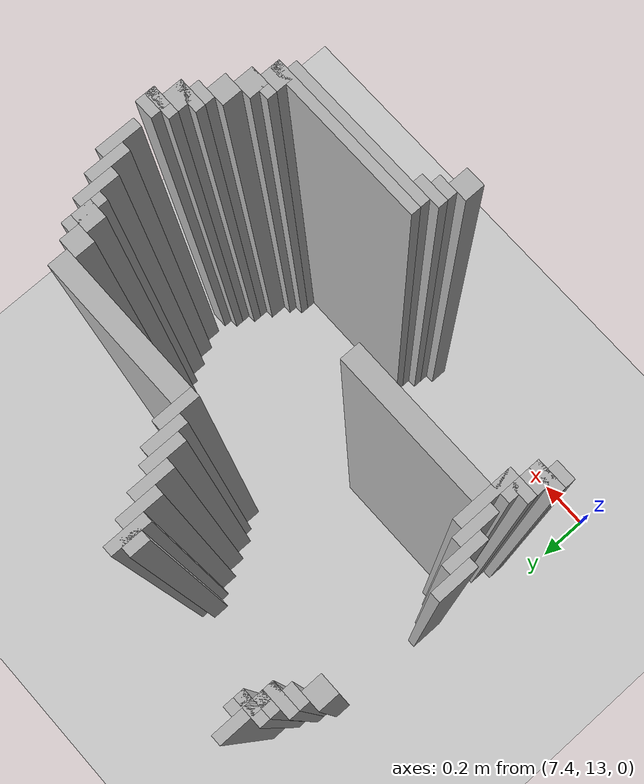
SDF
<sdf version="1.6">
 <world name="slam_world">
  <model name="ground_plane">
   <static>true</static>
   <link name="link">
    <collision name="collision">
     <geometry><plane><normal>0 0 1</normal><size>100 100</size></plane></geometry>
    </collision>
    <visual name="visual">
     <geometry><plane><normal>0 0 1</normal><size>100 100</size></plane></geometry>
     <material>
      <ambient>0.8 0.8 0.8 1</ambient>
      <diffuse>0.8 0.8 0.8 1</diffuse>
      <specular>0.8 0.8 0.8 1</specular>
     </material>
    </visual>
   </link>
  </model>
  <model name="wall_987">
   <static>true</static>
   <pose>7.604408352668213 14.408352668213457 1.0 0 0 0</pose>
   <link name="link">
    <collision name="collision">
     <geometry><box><size>0.03480278422273782 0.2088167053364269 2.0</size></box></geometry>
    </collision>
    <visual name="visual">
     <geometry><box><size>0.03480278422273782 0.2088167053364269 2.0</size></box></geometry>
     <material><ambient>0.5 0.5 0.5 1</ambient><diffuse>0.7 0.7 0.7 1</diffuse></material>
    </visual>
   </link>
  </model>
  <model name="wall_1009">
   <static>true</static>
   <pose>7.6392111368909505 14.408352668213457 1.0 0 0 0</pose>
   <link name="link">
    <collision name="collision">
     <geometry><box><size>0.03480278422273782 0.06960556844547564 2.0</size></box></geometry>
    </collision>
    <visual name="visual">
     <geometry><box><size>0.03480278422273782 0.06960556844547564 2.0</size></box></geometry>
     <material><ambient>0.5 0.5 0.5 1</ambient><diffuse>0.7 0.7 0.7 1</diffuse></material>
    </visual>
   </link>
  </model>
  <model name="wall_1024">
   <static>true</static>
   <pose>7.604408352668213 14.390951276102088 1.0 0 0 0</pose>
   <link name="link">
    <collision name="collision">
     <geometry><box><size>0.10440835266821345 0.03480278422273782 2.0</size></box></geometry>
    </collision>
    <visual name="visual">
     <geometry><box><size>0.10440835266821345 0.03480278422273782 2.0</size></box></geometry>
     <material><ambient>0.5 0.5 0.5 1</ambient><diffuse>0.7 0.7 0.7 1</diffuse></material>
    </visual>
   </link>
  </model>
  <model name="wall_1025">
   <static>true</static>
   <pose>8.161252900232018 14.33874709976798 1.0 0 0 0</pose>
   <link name="link">
    <collision name="collision">
     <geometry><box><size>0.03480278422273782 0.13921113689095127 2.0</size></box></geometry>
    </collision>
    <visual name="visual">
     <geometry><box><size>0.03480278422273782 0.13921113689095127 2.0</size></box></geometry>
     <material><ambient>0.5 0.5 0.5 1</ambient><diffuse>0.7 0.7 0.7 1</diffuse></material>
    </visual>
   </link>
  </model>
  <model name="wall_1036">
   <static>true</static>
   <pose>7.587006960556844 14.33874709976798 1.0 0 0 0</pose>
   <link name="link">
    <collision name="collision">
     <geometry><box><size>0.06960556844547564 0.06960556844547564 2.0</size></box></geometry>
    </collision>
    <visual name="visual">
     <geometry><box><size>0.06960556844547564 0.06960556844547564 2.0</size></box></geometry>
     <material><ambient>0.5 0.5 0.5 1</ambient><diffuse>0.7 0.7 0.7 1</diffuse></material>
    </visual>
   </link>
  </model>
  <model name="wall_1037">
   <static>true</static>
   <pose>8.14385150812065 14.33874709976798 1.0 0 0 0</pose>
   <link name="link">
    <collision name="collision">
     <geometry><box><size>0.06960556844547564 0.06960556844547564 2.0</size></box></geometry>
    </collision>
    <visual name="visual">
     <geometry><box><size>0.06960556844547564 0.06960556844547564 2.0</size></box></geometry>
     <material><ambient>0.5 0.5 0.5 1</ambient><diffuse>0.7 0.7 0.7 1</diffuse></material>
    </visual>
   </link>
  </model>
  <model name="wall_1048">
   <static>true</static>
   <pose>7.569605568445476 14.321345707656612 1.0 0 0 0</pose>
   <link name="link">
    <collision name="collision">
     <geometry><box><size>0.10440835266821345 0.03480278422273782 2.0</size></box></geometry>
    </collision>
    <visual name="visual">
     <geometry><box><size>0.10440835266821345 0.03480278422273782 2.0</size></box></geometry>
     <material><ambient>0.5 0.5 0.5 1</ambient><diffuse>0.7 0.7 0.7 1</diffuse></material>
    </visual>
   </link>
  </model>
  <model name="wall_1049">
   <static>true</static>
   <pose>8.196055684454755 14.269141531322505 1.0 0 0 0</pose>
   <link name="link">
    <collision name="collision">
     <geometry><box><size>0.03480278422273782 0.13921113689095127 2.0</size></box></geometry>
    </collision>
    <visual name="visual">
     <geometry><box><size>0.03480278422273782 0.13921113689095127 2.0</size></box></geometry>
     <material><ambient>0.5 0.5 0.5 1</ambient><diffuse>0.7 0.7 0.7 1</diffuse></material>
    </visual>
   </link>
  </model>
  <model name="wall_1059">
   <static>true</static>
   <pose>7.552204176334106 14.286542923433874 1.0 0 0 0</pose>
   <link name="link">
    <collision name="collision">
     <geometry><box><size>0.06960556844547564 0.03480278422273782 2.0</size></box></geometry>
    </collision>
    <visual name="visual">
     <geometry><box><size>0.06960556844547564 0.03480278422273782 2.0</size></box></geometry>
     <material><ambient>0.5 0.5 0.5 1</ambient><diffuse>0.7 0.7 0.7 1</diffuse></material>
    </visual>
   </link>
  </model>
  <model name="wall_1067">
   <static>true</static>
   <pose>7.517401392111369 14.234338747099768 1.0 0 0 0</pose>
   <link name="link">
    <collision name="collision">
     <geometry><box><size>0.06960556844547564 0.06960556844547564 2.0</size></box></geometry>
    </collision>
    <visual name="visual">
     <geometry><box><size>0.06960556844547564 0.06960556844547564 2.0</size></box></geometry>
     <material><ambient>0.5 0.5 0.5 1</ambient><diffuse>0.7 0.7 0.7 1</diffuse></material>
    </visual>
   </link>
  </model>
  <model name="wall_1068">
   <static>true</static>
   <pose>8.230858468677495 14.199535962877029 1.0 0 0 0</pose>
   <link name="link">
    <collision name="collision">
     <geometry><box><size>0.03480278422273782 0.13921113689095127 2.0</size></box></geometry>
    </collision>
    <visual name="visual">
     <geometry><box><size>0.03480278422273782 0.13921113689095127 2.0</size></box></geometry>
     <material><ambient>0.5 0.5 0.5 1</ambient><diffuse>0.7 0.7 0.7 1</diffuse></material>
    </visual>
   </link>
  </model>
  <model name="wall_1080">
   <static>true</static>
   <pose>8.265661252900232 14.129930394431554 1.0 0 0 0</pose>
   <link name="link">
    <collision name="collision">
     <geometry><box><size>0.03480278422273782 0.13921113689095127 2.0</size></box></geometry>
    </collision>
    <visual name="visual">
     <geometry><box><size>0.03480278422273782 0.13921113689095127 2.0</size></box></geometry>
     <material><ambient>0.5 0.5 0.5 1</ambient><diffuse>0.7 0.7 0.7 1</diffuse></material>
    </visual>
   </link>
  </model>
  <model name="wall_1092">
   <static>true</static>
   <pose>8.30046403712297 14.095127610208817 1.0 0 0 0</pose>
   <link name="link">
    <collision name="collision">
     <geometry><box><size>0.03480278422273782 0.13921113689095127 2.0</size></box></geometry>
    </collision>
    <visual name="visual">
     <geometry><box><size>0.03480278422273782 0.13921113689095127 2.0</size></box></geometry>
     <material><ambient>0.5 0.5 0.5 1</ambient><diffuse>0.7 0.7 0.7 1</diffuse></material>
    </visual>
   </link>
  </model>
  <model name="wall_1111">
   <static>true</static>
   <pose>8.335266821345707 14.02552204176334 1.0 0 0 0</pose>
   <link name="link">
    <collision name="collision">
     <geometry><box><size>0.03480278422273782 0.13921113689095127 2.0</size></box></geometry>
    </collision>
    <visual name="visual">
     <geometry><box><size>0.03480278422273782 0.13921113689095127 2.0</size></box></geometry>
     <material><ambient>0.5 0.5 0.5 1</ambient><diffuse>0.7 0.7 0.7 1</diffuse></material>
    </visual>
   </link>
  </model>
  <model name="wall_1132">
   <static>true</static>
   <pose>8.61368909512761 13.990719257540603 1.0 0 0 0</pose>
   <link name="link">
    <collision name="collision">
     <geometry><box><size>0.5220417633410672 0.06960556844547564 2.0</size></box></geometry>
    </collision>
    <visual name="visual">
     <geometry><box><size>0.5220417633410672 0.06960556844547564 2.0</size></box></geometry>
     <material><ambient>0.5 0.5 0.5 1</ambient><diffuse>0.7 0.7 0.7 1</diffuse></material>
    </visual>
   </link>
  </model>
  <model name="wall_1147">
   <static>true</static>
   <pose>8.874709976798144 13.921113689095128 1.0 0 0 0</pose>
   <link name="link">
    <collision name="collision">
     <geometry><box><size>0.06960556844547564 0.06960556844547564 2.0</size></box></geometry>
    </collision>
    <visual name="visual">
     <geometry><box><size>0.06960556844547564 0.06960556844547564 2.0</size></box></geometry>
     <material><ambient>0.5 0.5 0.5 1</ambient><diffuse>0.7 0.7 0.7 1</diffuse></material>
    </visual>
   </link>
  </model>
  <model name="wall_1164">
   <static>true</static>
   <pose>8.92691415313225 13.851508120649651 1.0 0 0 0</pose>
   <link name="link">
    <collision name="collision">
     <geometry><box><size>0.03480278422273782 0.13921113689095127 2.0</size></box></geometry>
    </collision>
    <visual name="visual">
     <geometry><box><size>0.03480278422273782 0.13921113689095127 2.0</size></box></geometry>
     <material><ambient>0.5 0.5 0.5 1</ambient><diffuse>0.7 0.7 0.7 1</diffuse></material>
    </visual>
   </link>
  </model>
  <model name="wall_1181">
   <static>true</static>
   <pose>8.909512761020881 13.851508120649651 1.0 0 0 0</pose>
   <link name="link">
    <collision name="collision">
     <geometry><box><size>0.06960556844547564 0.06960556844547564 2.0</size></box></geometry>
    </collision>
    <visual name="visual">
     <geometry><box><size>0.06960556844547564 0.06960556844547564 2.0</size></box></geometry>
     <material><ambient>0.5 0.5 0.5 1</ambient><diffuse>0.7 0.7 0.7 1</diffuse></material>
    </visual>
   </link>
  </model>
  <model name="wall_1197">
   <static>true</static>
   <pose>7.5 13.781902552204176 1.0 0 0 0</pose>
   <link name="link">
    <collision name="collision">
     <geometry><box><size>0.03480278422273782 0.13921113689095127 2.0</size></box></geometry>
    </collision>
    <visual name="visual">
     <geometry><box><size>0.03480278422273782 0.13921113689095127 2.0</size></box></geometry>
     <material><ambient>0.5 0.5 0.5 1</ambient><diffuse>0.7 0.7 0.7 1</diffuse></material>
    </visual>
   </link>
  </model>
  <model name="wall_1198">
   <static>true</static>
   <pose>8.961716937354987 13.781902552204176 1.0 0 0 0</pose>
   <link name="link">
    <collision name="collision">
     <geometry><box><size>0.03480278422273782 0.13921113689095127 2.0</size></box></geometry>
    </collision>
    <visual name="visual">
     <geometry><box><size>0.03480278422273782 0.13921113689095127 2.0</size></box></geometry>
     <material><ambient>0.5 0.5 0.5 1</ambient><diffuse>0.7 0.7 0.7 1</diffuse></material>
    </visual>
   </link>
  </model>
  <model name="wall_1220">
   <static>true</static>
   <pose>7.534802784222737 13.7122969837587 1.0 0 0 0</pose>
   <link name="link">
    <collision name="collision">
     <geometry><box><size>0.03480278422273782 0.13921113689095127 2.0</size></box></geometry>
    </collision>
    <visual name="visual">
     <geometry><box><size>0.03480278422273782 0.13921113689095127 2.0</size></box></geometry>
     <material><ambient>0.5 0.5 0.5 1</ambient><diffuse>0.7 0.7 0.7 1</diffuse></material>
    </visual>
   </link>
  </model>
  <model name="wall_1221">
   <static>true</static>
   <pose>8.996519721577727 13.7122969837587 1.0 0 0 0</pose>
   <link name="link">
    <collision name="collision">
     <geometry><box><size>0.03480278422273782 0.13921113689095127 2.0</size></box></geometry>
    </collision>
    <visual name="visual">
     <geometry><box><size>0.03480278422273782 0.13921113689095127 2.0</size></box></geometry>
     <material><ambient>0.5 0.5 0.5 1</ambient><diffuse>0.7 0.7 0.7 1</diffuse></material>
    </visual>
   </link>
  </model>
  <model name="wall_1237">
   <static>true</static>
   <pose>7.569605568445476 13.642691415313225 1.0 0 0 0</pose>
   <link name="link">
    <collision name="collision">
     <geometry><box><size>0.03480278422273782 0.13921113689095127 2.0</size></box></geometry>
    </collision>
    <visual name="visual">
     <geometry><box><size>0.03480278422273782 0.13921113689095127 2.0</size></box></geometry>
     <material><ambient>0.5 0.5 0.5 1</ambient><diffuse>0.7 0.7 0.7 1</diffuse></material>
    </visual>
   </link>
  </model>
  <model name="wall_1238">
   <static>true</static>
   <pose>9.031322505800464 13.642691415313225 1.0 0 0 0</pose>
   <link name="link">
    <collision name="collision">
     <geometry><box><size>0.03480278422273782 0.13921113689095127 2.0</size></box></geometry>
    </collision>
    <visual name="visual">
     <geometry><box><size>0.03480278422273782 0.13921113689095127 2.0</size></box></geometry>
     <material><ambient>0.5 0.5 0.5 1</ambient><diffuse>0.7 0.7 0.7 1</diffuse></material>
    </visual>
   </link>
  </model>
  <model name="wall_1254">
   <static>true</static>
   <pose>7.604408352668213 13.573085846867748 1.0 0 0 0</pose>
   <link name="link">
    <collision name="collision">
     <geometry><box><size>0.03480278422273782 0.2088167053364269 2.0</size></box></geometry>
    </collision>
    <visual name="visual">
     <geometry><box><size>0.03480278422273782 0.2088167053364269 2.0</size></box></geometry>
     <material><ambient>0.5 0.5 0.5 1</ambient><diffuse>0.7 0.7 0.7 1</diffuse></material>
    </visual>
   </link>
  </model>
  <model name="wall_1276">
   <static>true</static>
   <pose>7.882830626450116 13.573085846867748 1.0 0 0 0</pose>
   <link name="link">
    <collision name="collision">
     <geometry><box><size>0.5220417633410672 0.06960556844547564 2.0</size></box></geometry>
    </collision>
    <visual name="visual">
     <geometry><box><size>0.5220417633410672 0.06960556844547564 2.0</size></box></geometry>
     <material><ambient>0.5 0.5 0.5 1</ambient><diffuse>0.7 0.7 0.7 1</diffuse></material>
    </visual>
   </link>
  </model>
  <model name="wall_1298">
   <static>true</static>
   <pose>7.587006960556844 13.503480278422273 1.0 0 0 0</pose>
   <link name="link">
    <collision name="collision">
     <geometry><box><size>0.06960556844547564 0.06960556844547564 2.0</size></box></geometry>
    </collision>
    <visual name="visual">
     <geometry><box><size>0.06960556844547564 0.06960556844547564 2.0</size></box></geometry>
     <material><ambient>0.5 0.5 0.5 1</ambient><diffuse>0.7 0.7 0.7 1</diffuse></material>
    </visual>
   </link>
  </model>
  <model name="wall_1299">
   <static>true</static>
   <pose>9.048723897911833 13.503480278422273 1.0 0 0 0</pose>
   <link name="link">
    <collision name="collision">
     <geometry><box><size>0.06960556844547564 0.06960556844547564 2.0</size></box></geometry>
    </collision>
    <visual name="visual">
     <geometry><box><size>0.06960556844547564 0.06960556844547564 2.0</size></box></geometry>
     <material><ambient>0.5 0.5 0.5 1</ambient><diffuse>0.7 0.7 0.7 1</diffuse></material>
    </visual>
   </link>
  </model>
  <model name="wall_1312">
   <static>true</static>
   <pose>7.569605568445476 13.486078886310905 1.0 0 0 0</pose>
   <link name="link">
    <collision name="collision">
     <geometry><box><size>0.10440835266821345 0.03480278422273782 2.0</size></box></geometry>
    </collision>
    <visual name="visual">
     <geometry><box><size>0.10440835266821345 0.03480278422273782 2.0</size></box></geometry>
     <material><ambient>0.5 0.5 0.5 1</ambient><diffuse>0.7 0.7 0.7 1</diffuse></material>
    </visual>
   </link>
  </model>
  <model name="wall_1313">
   <static>true</static>
   <pose>9.031322505800464 13.486078886310905 1.0 0 0 0</pose>
   <link name="link">
    <collision name="collision">
     <geometry><box><size>0.10440835266821345 0.03480278422273782 2.0</size></box></geometry>
    </collision>
    <visual name="visual">
     <geometry><box><size>0.10440835266821345 0.03480278422273782 2.0</size></box></geometry>
     <material><ambient>0.5 0.5 0.5 1</ambient><diffuse>0.7 0.7 0.7 1</diffuse></material>
    </visual>
   </link>
  </model>
  <model name="wall_1326">
   <static>true</static>
   <pose>7.552204176334106 13.433874709976797 1.0 0 0 0</pose>
   <link name="link">
    <collision name="collision">
     <geometry><box><size>0.06960556844547564 0.06960556844547564 2.0</size></box></geometry>
    </collision>
    <visual name="visual">
     <geometry><box><size>0.06960556844547564 0.06960556844547564 2.0</size></box></geometry>
     <material><ambient>0.5 0.5 0.5 1</ambient><diffuse>0.7 0.7 0.7 1</diffuse></material>
    </visual>
   </link>
  </model>
  <model name="wall_1327">
   <static>true</static>
   <pose>9.013921113689095 13.433874709976797 1.0 0 0 0</pose>
   <link name="link">
    <collision name="collision">
     <geometry><box><size>0.06960556844547564 0.06960556844547564 2.0</size></box></geometry>
    </collision>
    <visual name="visual">
     <geometry><box><size>0.06960556844547564 0.06960556844547564 2.0</size></box></geometry>
     <material><ambient>0.5 0.5 0.5 1</ambient><diffuse>0.7 0.7 0.7 1</diffuse></material>
    </visual>
   </link>
  </model>
  <model name="wall_1340">
   <static>true</static>
   <pose>7.534802784222737 13.416473317865428 1.0 0 0 0</pose>
   <link name="link">
    <collision name="collision">
     <geometry><box><size>0.10440835266821345 0.03480278422273782 2.0</size></box></geometry>
    </collision>
    <visual name="visual">
     <geometry><box><size>0.10440835266821345 0.03480278422273782 2.0</size></box></geometry>
     <material><ambient>0.5 0.5 0.5 1</ambient><diffuse>0.7 0.7 0.7 1</diffuse></material>
    </visual>
   </link>
  </model>
  <model name="wall_1341">
   <static>true</static>
   <pose>8.996519721577727 13.416473317865428 1.0 0 0 0</pose>
   <link name="link">
    <collision name="collision">
     <geometry><box><size>0.10440835266821345 0.03480278422273782 2.0</size></box></geometry>
    </collision>
    <visual name="visual">
     <geometry><box><size>0.10440835266821345 0.03480278422273782 2.0</size></box></geometry>
     <material><ambient>0.5 0.5 0.5 1</ambient><diffuse>0.7 0.7 0.7 1</diffuse></material>
    </visual>
   </link>
  </model>
  <model name="wall_1349">
   <static>true</static>
   <pose>7.517401392111369 13.38167053364269 1.0 0 0 0</pose>
   <link name="link">
    <collision name="collision">
     <geometry><box><size>0.06960556844547564 0.03480278422273782 2.0</size></box></geometry>
    </collision>
    <visual name="visual">
     <geometry><box><size>0.06960556844547564 0.03480278422273782 2.0</size></box></geometry>
     <material><ambient>0.5 0.5 0.5 1</ambient><diffuse>0.7 0.7 0.7 1</diffuse></material>
    </visual>
   </link>
  </model>
  <model name="wall_1350">
   <static>true</static>
   <pose>8.979118329466356 13.38167053364269 1.0 0 0 0</pose>
   <link name="link">
    <collision name="collision">
     <geometry><box><size>0.06960556844547564 0.03480278422273782 2.0</size></box></geometry>
    </collision>
    <visual name="visual">
     <geometry><box><size>0.06960556844547564 0.03480278422273782 2.0</size></box></geometry>
     <material><ambient>0.5 0.5 0.5 1</ambient><diffuse>0.7 0.7 0.7 1</diffuse></material>
    </visual>
   </link>
  </model>
  <model name="wall_1362">
   <static>true</static>
   <pose>8.944315545243619 13.329466357308585 1.0 0 0 0</pose>
   <link name="link">
    <collision name="collision">
     <geometry><box><size>0.06960556844547564 0.06960556844547564 2.0</size></box></geometry>
    </collision>
    <visual name="visual">
     <geometry><box><size>0.06960556844547564 0.06960556844547564 2.0</size></box></geometry>
     <material><ambient>0.5 0.5 0.5 1</ambient><diffuse>0.7 0.7 0.7 1</diffuse></material>
    </visual>
   </link>
  </model>
  <model name="wall_1376">
   <static>true</static>
   <pose>8.909512761020881 13.259860788863108 1.0 0 0 0</pose>
   <link name="link">
    <collision name="collision">
     <geometry><box><size>0.06960556844547564 0.06960556844547564 2.0</size></box></geometry>
    </collision>
    <visual name="visual">
     <geometry><box><size>0.06960556844547564 0.06960556844547564 2.0</size></box></geometry>
     <material><ambient>0.5 0.5 0.5 1</ambient><diffuse>0.7 0.7 0.7 1</diffuse></material>
    </visual>
   </link>
  </model>
  <model name="wall_1390">
   <static>true</static>
   <pose>8.892111368909513 13.24245939675174 1.0 0 0 0</pose>
   <link name="link">
    <collision name="collision">
     <geometry><box><size>0.10440835266821345 0.03480278422273782 2.0</size></box></geometry>
    </collision>
    <visual name="visual">
     <geometry><box><size>0.10440835266821345 0.03480278422273782 2.0</size></box></geometry>
     <material><ambient>0.5 0.5 0.5 1</ambient><diffuse>0.7 0.7 0.7 1</diffuse></material>
    </visual>
   </link>
  </model>
  <model name="wall_1399">
   <static>true</static>
   <pose>8.874709976798144 13.190255220417633 1.0 0 0 0</pose>
   <link name="link">
    <collision name="collision">
     <geometry><box><size>0.06960556844547564 0.06960556844547564 2.0</size></box></geometry>
    </collision>
    <visual name="visual">
     <geometry><box><size>0.06960556844547564 0.06960556844547564 2.0</size></box></geometry>
     <material><ambient>0.5 0.5 0.5 1</ambient><diffuse>0.7 0.7 0.7 1</diffuse></material>
    </visual>
   </link>
  </model>
  <model name="wall_1411">
   <static>true</static>
   <pose>8.61368909512761 13.172853828306264 1.0 0 0 0</pose>
   <link name="link">
    <collision name="collision">
     <geometry><box><size>0.5916473317865429 0.03480278422273782 2.0</size></box></geometry>
    </collision>
    <visual name="visual">
     <geometry><box><size>0.5916473317865429 0.03480278422273782 2.0</size></box></geometry>
     <material><ambient>0.5 0.5 0.5 1</ambient><diffuse>0.7 0.7 0.7 1</diffuse></material>
    </visual>
   </link>
  </model>
  <model name="wall_1423">
   <static>true</static>
   <pose>8.596287703016241 13.138051044083527 1.0 0 0 0</pose>
   <link name="link">
    <collision name="collision">
     <geometry><box><size>0.5568445475638051 0.03480278422273782 2.0</size></box></geometry>
    </collision>
    <visual name="visual">
     <geometry><box><size>0.5568445475638051 0.03480278422273782 2.0</size></box></geometry>
     <material><ambient>0.5 0.5 0.5 1</ambient><diffuse>0.7 0.7 0.7 1</diffuse></material>
    </visual>
   </link>
  </model>
  <model name="wall_1434">
   <static>true</static>
   <pose>8.335266821345707 13.103248259860788 1.0 0 0 0</pose>
   <link name="link">
    <collision name="collision">
     <geometry><box><size>0.10440835266821345 0.03480278422273782 2.0</size></box></geometry>
    </collision>
    <visual name="visual">
     <geometry><box><size>0.10440835266821345 0.03480278422273782 2.0</size></box></geometry>
     <material><ambient>0.5 0.5 0.5 1</ambient><diffuse>0.7 0.7 0.7 1</diffuse></material>
    </visual>
   </link>
  </model>
  <model name="wall_1445">
   <static>true</static>
   <pose>8.317865429234338 13.06844547563805 1.0 0 0 0</pose>
   <link name="link">
    <collision name="collision">
     <geometry><box><size>0.06960556844547564 0.03480278422273782 2.0</size></box></geometry>
    </collision>
    <visual name="visual">
     <geometry><box><size>0.06960556844547564 0.03480278422273782 2.0</size></box></geometry>
     <material><ambient>0.5 0.5 0.5 1</ambient><diffuse>0.7 0.7 0.7 1</diffuse></material>
    </visual>
   </link>
  </model>
  <model name="wall_1456">
   <static>true</static>
   <pose>8.2830626450116 13.016241299303944 1.0 0 0 0</pose>
   <link name="link">
    <collision name="collision">
     <geometry><box><size>0.06960556844547564 0.06960556844547564 2.0</size></box></geometry>
    </collision>
    <visual name="visual">
     <geometry><box><size>0.06960556844547564 0.06960556844547564 2.0</size></box></geometry>
     <material><ambient>0.5 0.5 0.5 1</ambient><diffuse>0.7 0.7 0.7 1</diffuse></material>
    </visual>
   </link>
  </model>
 </world>
</sdf>
